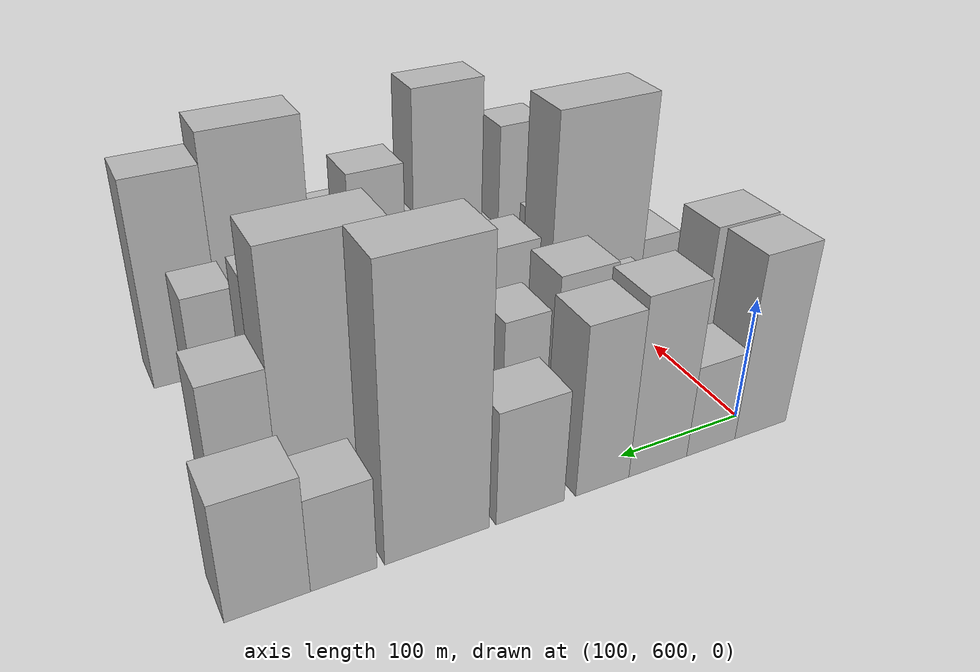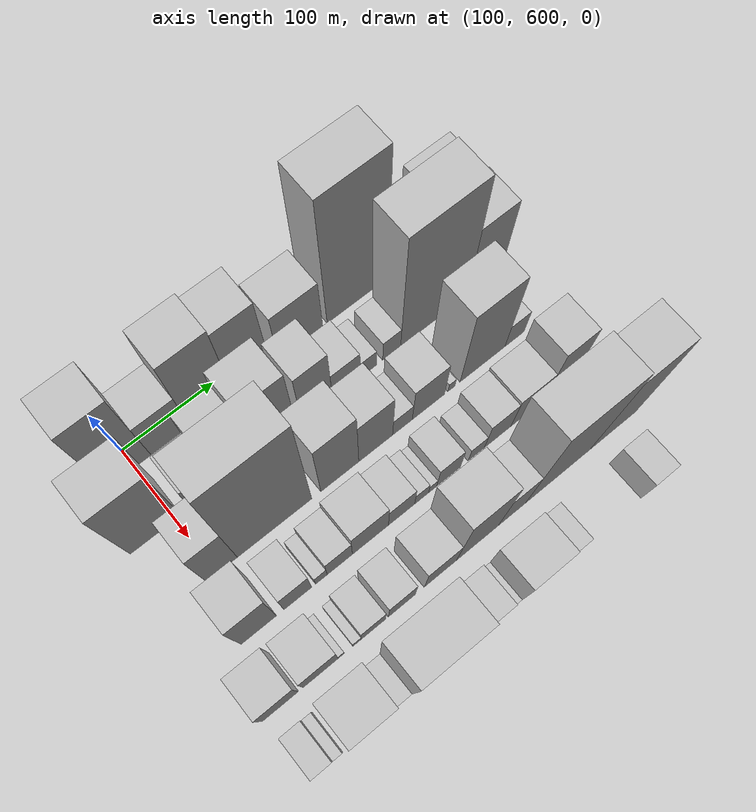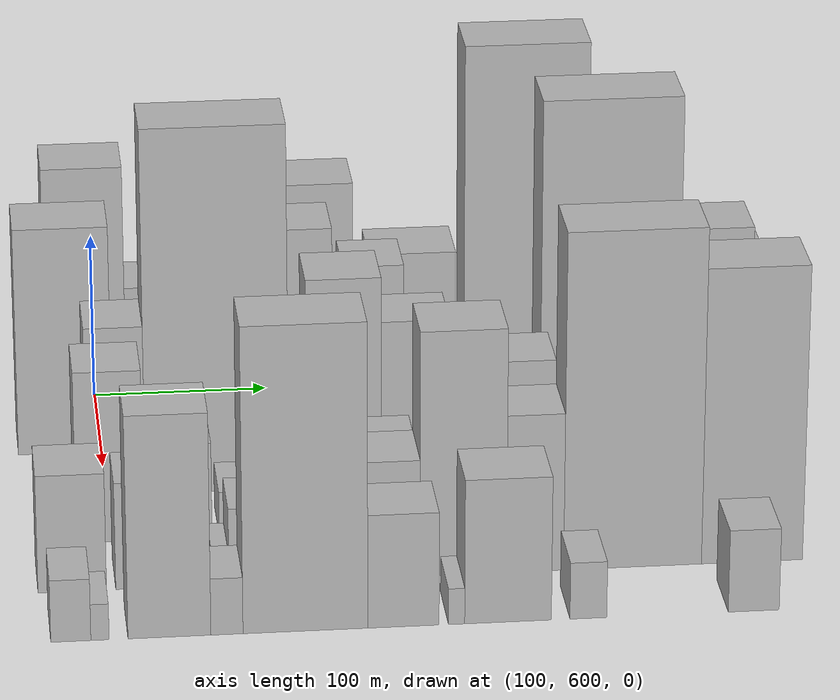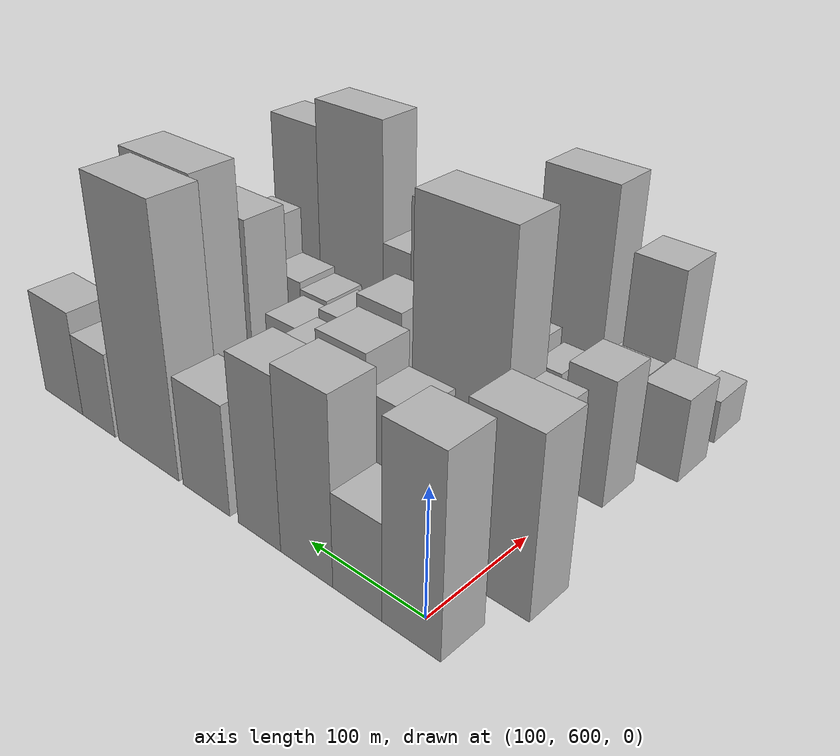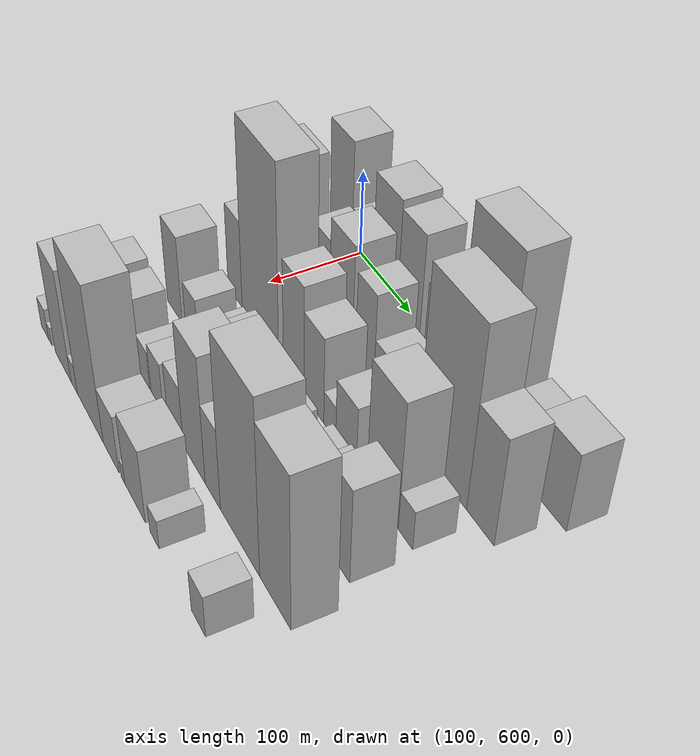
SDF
<sdf version="1.6">
 <world name="default">
  <model name="building_38">
   <static>1</static>
   <pose>100.0000 594.4794 0 0.000000 0.000000 0.000000</pose>
   <link name="link">
    <pose>0 0 75.00 0 0 0</pose>
    <collision name="collision"><geometry><box><size>40.0000 46.2876 150.0000</size></box></geometry></collision>
    <visual name="visual">
     <cast_shadows>0</cast_shadows>
     <geometry><box><size>40.0000 46.2876 150.0000</size></box></geometry>
     <material>
      <script>
       <uri>model://HANNAS_wall/materials/scripts</uri>
       <uri>model://HANNAS_wall/materials/textures</uri>
       <name>vrc/HANNAS_wall</name>
      </script>
     </material>
    </visual>
   </link>
  </model>
  <model name="building_39">
   <static>1</static>
   <pose>100.0000 638.6480 0 0.000000 0.000000 0.000000</pose>
   <link name="link">
    <pose>0 0 37.50 0 0 0</pose>
    <collision name="collision"><geometry><box><size>40.0000 42.0495 75.0000</size></box></geometry></collision>
    <visual name="visual">
     <cast_shadows>0</cast_shadows>
     <geometry><box><size>40.0000 42.0495 75.0000</size></box></geometry>
     <material>
      <script>
       <uri>model://HANNAS_wall/materials/scripts</uri>
       <uri>model://HANNAS_wall/materials/textures</uri>
       <name>vrc/HANNAS_wall</name>
      </script>
     </material>
    </visual>
   </link>
  </model>
  <model name="building_40">
   <static>1</static>
   <pose>100.0000 683.7418 0 0.000000 0.000000 0.000000</pose>
   <link name="link">
    <pose>0 0 72.00 0 0 0</pose>
    <collision name="collision"><geometry><box><size>40.0000 48.1381 144.0000</size></box></geometry></collision>
    <visual name="visual">
     <cast_shadows>0</cast_shadows>
     <geometry><box><size>40.0000 48.1381 144.0000</size></box></geometry>
     <material>
      <script>
       <uri>model://HANNAS_wall/materials/scripts</uri>
       <uri>model://HANNAS_wall/materials/textures</uri>
       <name>vrc/HANNAS_wall</name>
      </script>
     </material>
    </visual>
   </link>
  </model>
  <model name="building_41">
   <static>1</static>
   <pose>100.0000 728.9118 0 0.000000 0.000000 0.000000</pose>
   <link name="link">
    <pose>0 0 67.50 0 0 0</pose>
    <collision name="collision"><geometry><box><size>40.0000 42.2020 135.0000</size></box></geometry></collision>
    <visual name="visual">
     <cast_shadows>0</cast_shadows>
     <geometry><box><size>40.0000 42.2020 135.0000</size></box></geometry>
     <material>
      <script>
       <uri>model://HANNAS_wall/materials/scripts</uri>
       <uri>model://HANNAS_wall/materials/textures</uri>
       <name>vrc/HANNAS_wall</name>
      </script>
     </material>
    </visual>
   </link>
  </model>
  <model name="building_42">
   <static>1</static>
   <pose>100.0000 784.3996 0 0.000000 0.000000 0.000000</pose>
   <link name="link">
    <pose>0 0 45.00 0 0 0</pose>
    <collision name="collision"><geometry><box><size>40.0000 50.7735 90.0000</size></box></geometry></collision>
    <visual name="visual">
     <cast_shadows>0</cast_shadows>
     <geometry><box><size>40.0000 50.7735 90.0000</size></box></geometry>
     <material>
      <script>
       <uri>model://HANNAS_wall/materials/scripts</uri>
       <uri>model://HANNAS_wall/materials/textures</uri>
       <name>vrc/HANNAS_wall</name>
      </script>
     </material>
    </visual>
   </link>
  </model>
  <model name="building_43">
   <static>1</static>
   <pose>100.0000 850.8839 0 0.000000 0.000000 0.000000</pose>
   <link name="link">
    <pose>0 0 108.00 0 0 0</pose>
    <collision name="collision"><geometry><box><size>40.0000 72.1952 216.0000</size></box></geometry></collision>
    <visual name="visual">
     <cast_shadows>0</cast_shadows>
     <geometry><box><size>40.0000 72.1952 216.0000</size></box></geometry>
     <material>
      <script>
       <uri>model://HANNAS_wall/materials/scripts</uri>
       <uri>model://HANNAS_wall/materials/textures</uri>
       <name>vrc/HANNAS_wall</name>
      </script>
     </material>
    </visual>
   </link>
  </model>
  <model name="building_44">
   <static>1</static>
   <pose>100.0000 913.4026 0 0.000000 0.000000 0.000000</pose>
   <link name="link">
    <pose>0 0 36.00 0 0 0</pose>
    <collision name="collision"><geometry><box><size>40.0000 42.8422 72.0000</size></box></geometry></collision>
    <visual name="visual">
     <cast_shadows>0</cast_shadows>
     <geometry><box><size>40.0000 42.8422 72.0000</size></box></geometry>
     <material>
      <script>
       <uri>model://HANNAS_wall/materials/scripts</uri>
       <uri>model://HANNAS_wall/materials/textures</uri>
       <name>vrc/HANNAS_wall</name>
      </script>
     </material>
    </visual>
   </link>
  </model>
  <model name="building_45">
   <static>1</static>
   <pose>100.0000 961.0812 0 0.000000 0.000000 0.000000</pose>
   <link name="link">
    <pose>0 0 45.00 0 0 0</pose>
    <collision name="collision"><geometry><box><size>40.0000 52.5149 90.0000</size></box></geometry></collision>
    <visual name="visual">
     <cast_shadows>0</cast_shadows>
     <geometry><box><size>40.0000 52.5149 90.0000</size></box></geometry>
     <material>
      <script>
       <uri>model://HANNAS_wall/materials/scripts</uri>
       <uri>model://HANNAS_wall/materials/textures</uri>
       <name>vrc/HANNAS_wall</name>
      </script>
     </material>
    </visual>
   </link>
  </model>
  <model name="building_83">
   <static>1</static>
   <pose>160.0000 579.6545 0 0.000000 0.000000 0.000000</pose>
   <link name="link">
    <pose>0 0 69.00 0 0 0</pose>
    <collision name="collision"><geometry><box><size>40.0000 53.5036 138.0000</size></box></geometry></collision>
    <visual name="visual">
     <cast_shadows>0</cast_shadows>
     <geometry><box><size>40.0000 53.5036 138.0000</size></box></geometry>
     <material>
      <script>
       <uri>model://HANNAS_wall/materials/scripts</uri>
       <uri>model://HANNAS_wall/materials/textures</uri>
       <name>vrc/HANNAS_wall</name>
      </script>
     </material>
    </visual>
   </link>
  </model>
  <model name="building_84">
   <static>1</static>
   <pose>160.0000 632.4635 0 0.000000 0.000000 0.000000</pose>
   <link name="link">
    <pose>0 0 27.00 0 0 0</pose>
    <collision name="collision"><geometry><box><size>40.0000 32.1143 54.0000</size></box></geometry></collision>
    <visual name="visual">
     <cast_shadows>0</cast_shadows>
     <geometry><box><size>40.0000 32.1143 54.0000</size></box></geometry>
     <material>
      <script>
       <uri>model://HANNAS_wall/materials/scripts</uri>
       <uri>model://HANNAS_wall/materials/textures</uri>
       <name>vrc/HANNAS_wall</name>
      </script>
     </material>
    </visual>
   </link>
  </model>
  <model name="building_85">
   <static>1</static>
   <pose>160.0000 668.0092 0 0.000000 0.000000 0.000000</pose>
   <link name="link">
    <pose>0 0 52.50 0 0 0</pose>
    <collision name="collision"><geometry><box><size>40.0000 38.9771 105.0000</size></box></geometry></collision>
    <visual name="visual">
     <cast_shadows>0</cast_shadows>
     <geometry><box><size>40.0000 38.9771 105.0000</size></box></geometry>
     <material>
      <script>
       <uri>model://HANNAS_wall/materials/scripts</uri>
       <uri>model://HANNAS_wall/materials/textures</uri>
       <name>vrc/HANNAS_wall</name>
      </script>
     </material>
    </visual>
   </link>
  </model>
  <model name="building_86">
   <static>1</static>
   <pose>160.0000 710.0963 0 0.000000 0.000000 0.000000</pose>
   <link name="link">
    <pose>0 0 66.00 0 0 0</pose>
    <collision name="collision"><geometry><box><size>40.0000 45.1971 132.0000</size></box></geometry></collision>
    <visual name="visual">
     <cast_shadows>0</cast_shadows>
     <geometry><box><size>40.0000 45.1971 132.0000</size></box></geometry>
     <material>
      <script>
       <uri>model://HANNAS_wall/materials/scripts</uri>
       <uri>model://HANNAS_wall/materials/textures</uri>
       <name>vrc/HANNAS_wall</name>
      </script>
     </material>
    </visual>
   </link>
  </model>
  <model name="building_87">
   <static>1</static>
   <pose>160.0000 756.0813 0 0.000000 0.000000 0.000000</pose>
   <link name="link">
    <pose>0 0 54.00 0 0 0</pose>
    <collision name="collision"><geometry><box><size>40.0000 34.7728 108.0000</size></box></geometry></collision>
    <visual name="visual">
     <cast_shadows>0</cast_shadows>
     <geometry><box><size>40.0000 34.7728 108.0000</size></box></geometry>
     <material>
      <script>
       <uri>model://HANNAS_wall/materials/scripts</uri>
       <uri>model://HANNAS_wall/materials/textures</uri>
       <name>vrc/HANNAS_wall</name>
      </script>
     </material>
    </visual>
   </link>
  </model>
  <model name="building_88">
   <static>1</static>
   <pose>160.0000 789.5304 0 0.000000 0.000000 0.000000</pose>
   <link name="link">
    <pose>0 0 28.50 0 0 0</pose>
    <collision name="collision"><geometry><box><size>40.0000 32.1255 57.0000</size></box></geometry></collision>
    <visual name="visual">
     <cast_shadows>0</cast_shadows>
     <geometry><box><size>40.0000 32.1255 57.0000</size></box></geometry>
     <material>
      <script>
       <uri>model://HANNAS_wall/materials/scripts</uri>
       <uri>model://HANNAS_wall/materials/textures</uri>
       <name>vrc/HANNAS_wall</name>
      </script>
     </material>
    </visual>
   </link>
  </model>
  <model name="building_89">
   <static>1</static>
   <pose>160.0000 814.9199 0 0.000000 0.000000 0.000000</pose>
   <link name="link">
    <pose>0 0 16.50 0 0 0</pose>
    <collision name="collision"><geometry><box><size>40.0000 18.6533 33.0000</size></box></geometry></collision>
    <visual name="visual">
     <cast_shadows>0</cast_shadows>
     <geometry><box><size>40.0000 18.6533 33.0000</size></box></geometry>
     <material>
      <script>
       <uri>model://HANNAS_wall/materials/scripts</uri>
       <uri>model://HANNAS_wall/materials/textures</uri>
       <name>vrc/HANNAS_wall</name>
      </script>
     </material>
    </visual>
   </link>
  </model>
  <model name="building_90">
   <static>1</static>
   <pose>160.0000 841.7469 0 0.000000 0.000000 0.000000</pose>
   <link name="link">
    <pose>0 0 19.50 0 0 0</pose>
    <collision name="collision"><geometry><box><size>40.0000 21.0008 39.0000</size></box></geometry></collision>
    <visual name="visual">
     <cast_shadows>0</cast_shadows>
     <geometry><box><size>40.0000 21.0008 39.0000</size></box></geometry>
     <material>
      <script>
       <uri>model://HANNAS_wall/materials/scripts</uri>
       <uri>model://HANNAS_wall/materials/textures</uri>
       <name>vrc/HANNAS_wall</name>
      </script>
     </material>
    </visual>
   </link>
  </model>
  <model name="building_91">
   <static>1</static>
   <pose>160.0000 892.2612 0 0.000000 0.000000 0.000000</pose>
   <link name="link">
    <pose>0 0 102.00 0 0 0</pose>
    <collision name="collision"><geometry><box><size>40.0000 80.0278 204.0000</size></box></geometry></collision>
    <visual name="visual">
     <cast_shadows>0</cast_shadows>
     <geometry><box><size>40.0000 80.0278 204.0000</size></box></geometry>
     <material>
      <script>
       <uri>model://HANNAS_wall/materials/scripts</uri>
       <uri>model://HANNAS_wall/materials/textures</uri>
       <name>vrc/HANNAS_wall</name>
      </script>
     </material>
    </visual>
   </link>
  </model>
  <model name="building_92">
   <static>1</static>
   <pose>160.0000 953.1589 0 0.000000 0.000000 0.000000</pose>
   <link name="link">
    <pose>0 0 61.50 0 0 0</pose>
    <collision name="collision"><geometry><box><size>40.0000 41.7677 123.0000</size></box></geometry></collision>
    <visual name="visual">
     <cast_shadows>0</cast_shadows>
     <geometry><box><size>40.0000 41.7677 123.0000</size></box></geometry>
     <material>
      <script>
       <uri>model://HANNAS_wall/materials/scripts</uri>
       <uri>model://HANNAS_wall/materials/textures</uri>
       <name>vrc/HANNAS_wall</name>
      </script>
     </material>
    </visual>
   </link>
  </model>
  <model name="building_136">
   <static>1</static>
   <pose>220.0000 605.5677 0 0.000000 0.000000 0.000000</pose>
   <link name="link">
    <pose>0 0 51.00 0 0 0</pose>
    <collision name="collision"><geometry><box><size>40.0000 32.8325 102.0000</size></box></geometry></collision>
    <visual name="visual">
     <cast_shadows>0</cast_shadows>
     <geometry><box><size>40.0000 32.8325 102.0000</size></box></geometry>
     <material>
      <script>
       <uri>model://HANNAS_wall/materials/scripts</uri>
       <uri>model://HANNAS_wall/materials/textures</uri>
       <name>vrc/HANNAS_wall</name>
      </script>
     </material>
    </visual>
   </link>
  </model>
  <model name="building_137">
   <static>1</static>
   <pose>220.0000 662.2606 0 0.000000 0.000000 0.000000</pose>
   <link name="link">
    <pose>0 0 109.50 0 0 0</pose>
    <collision name="collision"><geometry><box><size>40.0000 80.5534 219.0000</size></box></geometry></collision>
    <visual name="visual">
     <cast_shadows>0</cast_shadows>
     <geometry><box><size>40.0000 80.5534 219.0000</size></box></geometry>
     <material>
      <script>
       <uri>model://HANNAS_wall/materials/scripts</uri>
       <uri>model://HANNAS_wall/materials/textures</uri>
       <name>vrc/HANNAS_wall</name>
      </script>
     </material>
    </visual>
   </link>
  </model>
  <model name="building_138">
   <static>1</static>
   <pose>220.0000 733.6966 0 0.000000 0.000000 0.000000</pose>
   <link name="link">
    <pose>0 0 63.00 0 0 0</pose>
    <collision name="collision"><geometry><box><size>40.0000 42.3187 126.0000</size></box></geometry></collision>
    <visual name="visual">
     <cast_shadows>0</cast_shadows>
     <geometry><box><size>40.0000 42.3187 126.0000</size></box></geometry>
     <material>
      <script>
       <uri>model://HANNAS_wall/materials/scripts</uri>
       <uri>model://HANNAS_wall/materials/textures</uri>
       <name>vrc/HANNAS_wall</name>
      </script>
     </material>
    </visual>
   </link>
  </model>
  <model name="building_139">
   <static>1</static>
   <pose>220.0000 774.0160 0 0.000000 0.000000 0.000000</pose>
   <link name="link">
    <pose>0 0 49.50 0 0 0</pose>
    <collision name="collision"><geometry><box><size>40.0000 38.3201 99.0000</size></box></geometry></collision>
    <visual name="visual">
     <cast_shadows>0</cast_shadows>
     <geometry><box><size>40.0000 38.3201 99.0000</size></box></geometry>
     <material>
      <script>
       <uri>model://HANNAS_wall/materials/scripts</uri>
       <uri>model://HANNAS_wall/materials/textures</uri>
       <name>vrc/HANNAS_wall</name>
      </script>
     </material>
    </visual>
   </link>
  </model>
  <model name="building_140">
   <static>1</static>
   <pose>220.0000 804.4506 0 0.000000 0.000000 0.000000</pose>
   <link name="link">
    <pose>0 0 19.50 0 0 0</pose>
    <collision name="collision"><geometry><box><size>40.0000 22.5490 39.0000</size></box></geometry></collision>
    <visual name="visual">
     <cast_shadows>0</cast_shadows>
     <geometry><box><size>40.0000 22.5490 39.0000</size></box></geometry>
     <material>
      <script>
       <uri>model://HANNAS_wall/materials/scripts</uri>
       <uri>model://HANNAS_wall/materials/textures</uri>
       <name>vrc/HANNAS_wall</name>
      </script>
     </material>
    </visual>
   </link>
  </model>
  <model name="building_141">
   <static>1</static>
   <pose>220.0000 834.5217 0 0.000000 0.000000 0.000000</pose>
   <link name="link">
    <pose>0 0 36.00 0 0 0</pose>
    <collision name="collision"><geometry><box><size>40.0000 37.5933 72.0000</size></box></geometry></collision>
    <visual name="visual">
     <cast_shadows>0</cast_shadows>
     <geometry><box><size>40.0000 37.5933 72.0000</size></box></geometry>
     <material>
      <script>
       <uri>model://HANNAS_wall/materials/scripts</uri>
       <uri>model://HANNAS_wall/materials/textures</uri>
       <name>vrc/HANNAS_wall</name>
      </script>
     </material>
    </visual>
   </link>
  </model>
  <model name="building_142">
   <static>1</static>
   <pose>220.0000 861.5441 0 0.000000 0.000000 0.000000</pose>
   <link name="link">
    <pose>0 0 9.00 0 0 0</pose>
    <collision name="collision"><geometry><box><size>40.0000 8.4514 18.0000</size></box></geometry></collision>
    <visual name="visual">
     <cast_shadows>0</cast_shadows>
     <geometry><box><size>40.0000 8.4514 18.0000</size></box></geometry>
     <material>
      <script>
       <uri>model://HANNAS_wall/materials/scripts</uri>
       <uri>model://HANNAS_wall/materials/textures</uri>
       <name>vrc/HANNAS_wall</name>
      </script>
     </material>
    </visual>
   </link>
  </model>
  <model name="building_143">
   <static>1</static>
   <pose>220.0000 898.4843 0 0.000000 0.000000 0.000000</pose>
   <link name="link">
    <pose>0 0 72.00 0 0 0</pose>
    <collision name="collision"><geometry><box><size>40.0000 53.4292 144.0000</size></box></geometry></collision>
    <visual name="visual">
     <cast_shadows>0</cast_shadows>
     <geometry><box><size>40.0000 53.4292 144.0000</size></box></geometry>
     <material>
      <script>
       <uri>model://HANNAS_wall/materials/scripts</uri>
       <uri>model://HANNAS_wall/materials/textures</uri>
       <name>vrc/HANNAS_wall</name>
      </script>
     </material>
    </visual>
   </link>
  </model>
  <model name="building_144">
   <static>1</static>
   <pose>220.0000 936.8274 0 0.000000 0.000000 0.000000</pose>
   <link name="link">
    <pose>0 0 22.50 0 0 0</pose>
    <collision name="collision"><geometry><box><size>40.0000 23.2571 45.0000</size></box></geometry></collision>
    <visual name="visual">
     <cast_shadows>0</cast_shadows>
     <geometry><box><size>40.0000 23.2571 45.0000</size></box></geometry>
     <material>
      <script>
       <uri>model://HANNAS_wall/materials/scripts</uri>
       <uri>model://HANNAS_wall/materials/textures</uri>
       <name>vrc/HANNAS_wall</name>
      </script>
     </material>
    </visual>
   </link>
  </model>
  <model name="building_193">
   <static>1</static>
   <pose>280.0000 599.1414 0 0.000000 0.000000 0.000000</pose>
   <link name="link">
    <pose>0 0 51.00 0 0 0</pose>
    <collision name="collision"><geometry><box><size>40.0000 37.0242 102.0000</size></box></geometry></collision>
    <visual name="visual">
     <cast_shadows>0</cast_shadows>
     <geometry><box><size>40.0000 37.0242 102.0000</size></box></geometry>
     <material>
      <script>
       <uri>model://HANNAS_wall/materials/scripts</uri>
       <uri>model://HANNAS_wall/materials/textures</uri>
       <name>vrc/HANNAS_wall</name>
      </script>
     </material>
    </visual>
   </link>
  </model>
  <model name="building_194">
   <static>1</static>
   <pose>280.0000 640.4964 0 0.000000 0.000000 0.000000</pose>
   <link name="link">
    <pose>0 0 28.50 0 0 0</pose>
    <collision name="collision"><geometry><box><size>40.0000 29.6860 57.0000</size></box></geometry></collision>
    <visual name="visual">
     <cast_shadows>0</cast_shadows>
     <geometry><box><size>40.0000 29.6860 57.0000</size></box></geometry>
     <material>
      <script>
       <uri>model://HANNAS_wall/materials/scripts</uri>
       <uri>model://HANNAS_wall/materials/textures</uri>
       <name>vrc/HANNAS_wall</name>
      </script>
     </material>
    </visual>
   </link>
  </model>
  <model name="building_195">
   <static>1</static>
   <pose>280.0000 665.6558 0 0.000000 0.000000 0.000000</pose>
   <link name="link">
    <pose>0 0 13.50 0 0 0</pose>
    <collision name="collision"><geometry><box><size>40.0000 12.6327 27.0000</size></box></geometry></collision>
    <visual name="visual">
     <cast_shadows>0</cast_shadows>
     <geometry><box><size>40.0000 12.6327 27.0000</size></box></geometry>
     <material>
      <script>
       <uri>model://HANNAS_wall/materials/scripts</uri>
       <uri>model://HANNAS_wall/materials/textures</uri>
       <name>vrc/HANNAS_wall</name>
      </script>
     </material>
    </visual>
   </link>
  </model>
  <model name="building_196">
   <static>1</static>
   <pose>280.0000 685.6635 0 0.000000 0.000000 0.000000</pose>
   <link name="link">
    <pose>0 0 24.00 0 0 0</pose>
    <collision name="collision"><geometry><box><size>40.0000 27.3828 48.0000</size></box></geometry></collision>
    <visual name="visual">
     <cast_shadows>0</cast_shadows>
     <geometry><box><size>40.0000 27.3828 48.0000</size></box></geometry>
     <material>
      <script>
       <uri>model://HANNAS_wall/materials/scripts</uri>
       <uri>model://HANNAS_wall/materials/textures</uri>
       <name>vrc/HANNAS_wall</name>
      </script>
     </material>
    </visual>
   </link>
  </model>
  <model name="building_197">
   <static>1</static>
   <pose>280.0000 719.1361 0 0.000000 0.000000 0.000000</pose>
   <link name="link">
    <pose>0 0 33.00 0 0 0</pose>
    <collision name="collision"><geometry><box><size>40.0000 39.5623 66.0000</size></box></geometry></collision>
    <visual name="visual">
     <cast_shadows>0</cast_shadows>
     <geometry><box><size>40.0000 39.5623 66.0000</size></box></geometry>
     <material>
      <script>
       <uri>model://HANNAS_wall/materials/scripts</uri>
       <uri>model://HANNAS_wall/materials/textures</uri>
       <name>vrc/HANNAS_wall</name>
      </script>
     </material>
    </visual>
   </link>
  </model>
  <model name="building_198">
   <static>1</static>
   <pose>280.0000 753.5374 0 0.000000 0.000000 0.000000</pose>
   <link name="link">
    <pose>0 0 25.50 0 0 0</pose>
    <collision name="collision"><geometry><box><size>40.0000 29.2403 51.0000</size></box></geometry></collision>
    <visual name="visual">
     <cast_shadows>0</cast_shadows>
     <geometry><box><size>40.0000 29.2403 51.0000</size></box></geometry>
     <material>
      <script>
       <uri>model://HANNAS_wall/materials/scripts</uri>
       <uri>model://HANNAS_wall/materials/textures</uri>
       <name>vrc/HANNAS_wall</name>
      </script>
     </material>
    </visual>
   </link>
  </model>
  <model name="building_199">
   <static>1</static>
   <pose>280.0000 776.0563 0 0.000000 0.000000 0.000000</pose>
   <link name="link">
    <pose>0 0 15.00 0 0 0</pose>
    <collision name="collision"><geometry><box><size>40.0000 15.7974 30.0000</size></box></geometry></collision>
    <visual name="visual">
     <cast_shadows>0</cast_shadows>
     <geometry><box><size>40.0000 15.7974 30.0000</size></box></geometry>
     <material>
      <script>
       <uri>model://HANNAS_wall/materials/scripts</uri>
       <uri>model://HANNAS_wall/materials/textures</uri>
       <name>vrc/HANNAS_wall</name>
      </script>
     </material>
    </visual>
   </link>
  </model>
  <model name="building_200">
   <static>1</static>
   <pose>280.0000 788.6261 0 0.000000 0.000000 0.000000</pose>
   <link name="link">
    <pose>0 0 10.50 0 0 0</pose>
    <collision name="collision"><geometry><box><size>40.0000 9.3422 21.0000</size></box></geometry></collision>
    <visual name="visual">
     <cast_shadows>0</cast_shadows>
     <geometry><box><size>40.0000 9.3422 21.0000</size></box></geometry>
     <material>
      <script>
       <uri>model://HANNAS_wall/materials/scripts</uri>
       <uri>model://HANNAS_wall/materials/textures</uri>
       <name>vrc/HANNAS_wall</name>
      </script>
     </material>
    </visual>
   </link>
  </model>
  <model name="building_201">
   <static>1</static>
   <pose>280.0000 806.8817 0 0.000000 0.000000 0.000000</pose>
   <link name="link">
    <pose>0 0 25.50 0 0 0</pose>
    <collision name="collision"><geometry><box><size>40.0000 27.1690 51.0000</size></box></geometry></collision>
    <visual name="visual">
     <cast_shadows>0</cast_shadows>
     <geometry><box><size>40.0000 27.1690 51.0000</size></box></geometry>
     <material>
      <script>
       <uri>model://HANNAS_wall/materials/scripts</uri>
       <uri>model://HANNAS_wall/materials/textures</uri>
       <name>vrc/HANNAS_wall</name>
      </script>
     </material>
    </visual>
   </link>
  </model>
  <model name="building_202">
   <static>1</static>
   <pose>280.0000 838.8329 0 0.000000 0.000000 0.000000</pose>
   <link name="link">
    <pose>0 0 16.50 0 0 0</pose>
    <collision name="collision"><geometry><box><size>40.0000 18.7334 33.0000</size></box></geometry></collision>
    <visual name="visual">
     <cast_shadows>0</cast_shadows>
     <geometry><box><size>40.0000 18.7334 33.0000</size></box></geometry>
     <material>
      <script>
       <uri>model://HANNAS_wall/materials/scripts</uri>
       <uri>model://HANNAS_wall/materials/textures</uri>
       <name>vrc/HANNAS_wall</name>
      </script>
     </material>
    </visual>
   </link>
  </model>
  <model name="building_203">
   <static>1</static>
   <pose>280.0000 863.8617 0 0.000000 0.000000 0.000000</pose>
   <link name="link">
    <pose>0 0 30.00 0 0 0</pose>
    <collision name="collision"><geometry><box><size>40.0000 31.3242 60.0000</size></box></geometry></collision>
    <visual name="visual">
     <cast_shadows>0</cast_shadows>
     <geometry><box><size>40.0000 31.3242 60.0000</size></box></geometry>
     <material>
      <script>
       <uri>model://HANNAS_wall/materials/scripts</uri>
       <uri>model://HANNAS_wall/materials/textures</uri>
       <name>vrc/HANNAS_wall</name>
      </script>
     </material>
    </visual>
   </link>
  </model>
  <model name="building_204">
   <static>1</static>
   <pose>280.0000 899.2611 0 0.000000 0.000000 0.000000</pose>
   <link name="link">
    <pose>0 0 33.00 0 0 0</pose>
    <collision name="collision"><geometry><box><size>40.0000 39.4746 66.0000</size></box></geometry></collision>
    <visual name="visual">
     <cast_shadows>0</cast_shadows>
     <geometry><box><size>40.0000 39.4746 66.0000</size></box></geometry>
     <material>
      <script>
       <uri>model://HANNAS_wall/materials/scripts</uri>
       <uri>model://HANNAS_wall/materials/textures</uri>
       <name>vrc/HANNAS_wall</name>
      </script>
     </material>
    </visual>
   </link>
  </model>
  <model name="building_205">
   <static>1</static>
   <pose>280.0000 937.0486 0 0.000000 0.000000 0.000000</pose>
   <link name="link">
    <pose>0 0 54.00 0 0 0</pose>
    <collision name="collision"><geometry><box><size>40.0000 36.1003 108.0000</size></box></geometry></collision>
    <visual name="visual">
     <cast_shadows>0</cast_shadows>
     <geometry><box><size>40.0000 36.1003 108.0000</size></box></geometry>
     <material>
      <script>
       <uri>model://HANNAS_wall/materials/scripts</uri>
       <uri>model://HANNAS_wall/materials/textures</uri>
       <name>vrc/HANNAS_wall</name>
      </script>
     </material>
    </visual>
   </link>
  </model>
  <model name="building_246">
   <static>1</static>
   <pose>340.0000 575.7698 0 0.000000 0.000000 0.000000</pose>
   <link name="link">
    <pose>0 0 34.50 0 0 0</pose>
    <collision name="collision"><geometry><box><size>40.0000 36.9555 69.0000</size></box></geometry></collision>
    <visual name="visual">
     <cast_shadows>0</cast_shadows>
     <geometry><box><size>40.0000 36.9555 69.0000</size></box></geometry>
     <material>
      <script>
       <uri>model://HANNAS_wall/materials/scripts</uri>
       <uri>model://HANNAS_wall/materials/textures</uri>
       <name>vrc/HANNAS_wall</name>
      </script>
     </material>
    </visual>
   </link>
  </model>
  <model name="building_247">
   <static>1</static>
   <pose>340.0000 617.5884 0 0.000000 0.000000 0.000000</pose>
   <link name="link">
    <pose>0 0 31.50 0 0 0</pose>
    <collision name="collision"><geometry><box><size>40.0000 36.6817 63.0000</size></box></geometry></collision>
    <visual name="visual">
     <cast_shadows>0</cast_shadows>
     <geometry><box><size>40.0000 36.6817 63.0000</size></box></geometry>
     <material>
      <script>
       <uri>model://HANNAS_wall/materials/scripts</uri>
       <uri>model://HANNAS_wall/materials/textures</uri>
       <name>vrc/HANNAS_wall</name>
      </script>
     </material>
    </visual>
   </link>
  </model>
  <model name="building_248">
   <static>1</static>
   <pose>340.0000 639.1783 0 0.000000 0.000000 0.000000</pose>
   <link name="link">
    <pose>0 0 7.50 0 0 0</pose>
    <collision name="collision"><geometry><box><size>40.0000 6.4982 15.0000</size></box></geometry></collision>
    <visual name="visual">
     <cast_shadows>0</cast_shadows>
     <geometry><box><size>40.0000 6.4982 15.0000</size></box></geometry>
     <material>
      <script>
       <uri>model://HANNAS_wall/materials/scripts</uri>
       <uri>model://HANNAS_wall/materials/textures</uri>
       <name>vrc/HANNAS_wall</name>
      </script>
     </material>
    </visual>
   </link>
  </model>
  <model name="building_249">
   <static>1</static>
   <pose>340.0000 655.9104 0 0.000000 0.000000 0.000000</pose>
   <link name="link">
    <pose>0 0 9.00 0 0 0</pose>
    <collision name="collision"><geometry><box><size>40.0000 8.9659 18.0000</size></box></geometry></collision>
    <visual name="visual">
     <cast_shadows>0</cast_shadows>
     <geometry><box><size>40.0000 8.9659 18.0000</size></box></geometry>
     <material>
      <script>
       <uri>model://HANNAS_wall/materials/scripts</uri>
       <uri>model://HANNAS_wall/materials/textures</uri>
       <name>vrc/HANNAS_wall</name>
      </script>
     </material>
    </visual>
   </link>
  </model>
  <model name="building_250">
   <static>1</static>
   <pose>340.0000 673.4461 0 0.000000 0.000000 0.000000</pose>
   <link name="link">
    <pose>0 0 22.50 0 0 0</pose>
    <collision name="collision"><geometry><box><size>40.0000 26.1056 45.0000</size></box></geometry></collision>
    <visual name="visual">
     <cast_shadows>0</cast_shadows>
     <geometry><box><size>40.0000 26.1056 45.0000</size></box></geometry>
     <material>
      <script>
       <uri>model://HANNAS_wall/materials/scripts</uri>
       <uri>model://HANNAS_wall/materials/textures</uri>
       <name>vrc/HANNAS_wall</name>
      </script>
     </material>
    </visual>
   </link>
  </model>
  <model name="building_251">
   <static>1</static>
   <pose>340.0000 704.0843 0 0.000000 0.000000 0.000000</pose>
   <link name="link">
    <pose>0 0 28.50 0 0 0</pose>
    <collision name="collision"><geometry><box><size>40.0000 29.1709 57.0000</size></box></geometry></collision>
    <visual name="visual">
     <cast_shadows>0</cast_shadows>
     <geometry><box><size>40.0000 29.1709 57.0000</size></box></geometry>
     <material>
      <script>
       <uri>model://HANNAS_wall/materials/scripts</uri>
       <uri>model://HANNAS_wall/materials/textures</uri>
       <name>vrc/HANNAS_wall</name>
      </script>
     </material>
    </visual>
   </link>
  </model>
  <model name="building_252">
   <static>1</static>
   <pose>340.0000 746.4697 0 0.000000 0.000000 0.000000</pose>
   <link name="link">
    <pose>0 0 34.50 0 0 0</pose>
    <collision name="collision"><geometry><box><size>40.0000 35.6000 69.0000</size></box></geometry></collision>
    <visual name="visual">
     <cast_shadows>0</cast_shadows>
     <geometry><box><size>40.0000 35.6000 69.0000</size></box></geometry>
     <material>
      <script>
       <uri>model://HANNAS_wall/materials/scripts</uri>
       <uri>model://HANNAS_wall/materials/textures</uri>
       <name>vrc/HANNAS_wall</name>
      </script>
     </material>
    </visual>
   </link>
  </model>
  <model name="building_253">
   <static>1</static>
   <pose>340.0000 787.8610 0 0.000000 0.000000 0.000000</pose>
   <link name="link">
    <pose>0 0 72.00 0 0 0</pose>
    <collision name="collision"><geometry><box><size>40.0000 47.1825 144.0000</size></box></geometry></collision>
    <visual name="visual">
     <cast_shadows>0</cast_shadows>
     <geometry><box><size>40.0000 47.1825 144.0000</size></box></geometry>
     <material>
      <script>
       <uri>model://HANNAS_wall/materials/scripts</uri>
       <uri>model://HANNAS_wall/materials/textures</uri>
       <name>vrc/HANNAS_wall</name>
      </script>
     </material>
    </visual>
   </link>
  </model>
  <model name="building_254">
   <static>1</static>
   <pose>340.0000 827.1012 0 0.000000 0.000000 0.000000</pose>
   <link name="link">
    <pose>0 0 46.50 0 0 0</pose>
    <collision name="collision"><geometry><box><size>40.0000 31.2980 93.0000</size></box></geometry></collision>
    <visual name="visual">
     <cast_shadows>0</cast_shadows>
     <geometry><box><size>40.0000 31.2980 93.0000</size></box></geometry>
     <material>
      <script>
       <uri>model://HANNAS_wall/materials/scripts</uri>
       <uri>model://HANNAS_wall/materials/textures</uri>
       <name>vrc/HANNAS_wall</name>
      </script>
     </material>
    </visual>
   </link>
  </model>
  <model name="building_255">
   <static>1</static>
   <pose>340.0000 880.5933 0 0.000000 0.000000 0.000000</pose>
   <link name="link">
    <pose>0 0 99.00 0 0 0</pose>
    <collision name="collision"><geometry><box><size>40.0000 75.6862 198.0000</size></box></geometry></collision>
    <visual name="visual">
     <cast_shadows>0</cast_shadows>
     <geometry><box><size>40.0000 75.6862 198.0000</size></box></geometry>
     <material>
      <script>
       <uri>model://HANNAS_wall/materials/scripts</uri>
       <uri>model://HANNAS_wall/materials/textures</uri>
       <name>vrc/HANNAS_wall</name>
      </script>
     </material>
    </visual>
   </link>
  </model>
  <model name="building_256">
   <static>1</static>
   <pose>340.0000 946.2891 0 0.000000 0.000000 0.000000</pose>
   <link name="link">
    <pose>0 0 87.00 0 0 0</pose>
    <collision name="collision"><geometry><box><size>40.0000 55.7053 174.0000</size></box></geometry></collision>
    <visual name="visual">
     <cast_shadows>0</cast_shadows>
     <geometry><box><size>40.0000 55.7053 174.0000</size></box></geometry>
     <material>
      <script>
       <uri>model://HANNAS_wall/materials/scripts</uri>
       <uri>model://HANNAS_wall/materials/textures</uri>
       <name>vrc/HANNAS_wall</name>
      </script>
     </material>
    </visual>
   </link>
  </model>
  <model name="building_298">
   <static>1</static>
   <pose>400.0000 572.3888 0 0.000000 0.000000 0.000000</pose>
   <link name="link">
    <pose>0 0 18.00 0 0 0</pose>
    <collision name="collision"><geometry><box><size>40.0000 21.2069 36.0000</size></box></geometry></collision>
    <visual name="visual">
     <cast_shadows>0</cast_shadows>
     <geometry><box><size>40.0000 21.2069 36.0000</size></box></geometry>
     <material>
      <script>
       <uri>model://HANNAS_wall/materials/scripts</uri>
       <uri>model://HANNAS_wall/materials/textures</uri>
       <name>vrc/HANNAS_wall</name>
      </script>
     </material>
    </visual>
   </link>
  </model>
  <model name="building_299">
   <static>1</static>
   <pose>400.0000 587.8126 0 0.000000 0.000000 0.000000</pose>
   <link name="link">
    <pose>0 0 10.50 0 0 0</pose>
    <collision name="collision"><geometry><box><size>40.0000 9.6407 21.0000</size></box></geometry></collision>
    <visual name="visual">
     <cast_shadows>0</cast_shadows>
     <geometry><box><size>40.0000 9.6407 21.0000</size></box></geometry>
     <material>
      <script>
       <uri>model://HANNAS_wall/materials/scripts</uri>
       <uri>model://HANNAS_wall/materials/textures</uri>
       <name>vrc/HANNAS_wall</name>
      </script>
     </material>
    </visual>
   </link>
  </model>
  <model name="building_300">
   <static>1</static>
   <pose>400.0000 624.6156 0 0.000000 0.000000 0.000000</pose>
   <link name="link">
    <pose>0 0 64.50 0 0 0</pose>
    <collision name="collision"><geometry><box><size>40.0000 43.9653 129.0000</size></box></geometry></collision>
    <visual name="visual">
     <cast_shadows>0</cast_shadows>
     <geometry><box><size>40.0000 43.9653 129.0000</size></box></geometry>
     <material>
      <script>
       <uri>model://HANNAS_wall/materials/scripts</uri>
       <uri>model://HANNAS_wall/materials/textures</uri>
       <name>vrc/HANNAS_wall</name>
      </script>
     </material>
    </visual>
   </link>
  </model>
  <model name="building_301">
   <static>1</static>
   <pose>400.0000 655.1265 0 0.000000 0.000000 0.000000</pose>
   <link name="link">
    <pose>0 0 16.50 0 0 0</pose>
    <collision name="collision"><geometry><box><size>40.0000 17.0566 33.0000</size></box></geometry></collision>
    <visual name="visual">
     <cast_shadows>0</cast_shadows>
     <geometry><box><size>40.0000 17.0566 33.0000</size></box></geometry>
     <material>
      <script>
       <uri>model://HANNAS_wall/materials/scripts</uri>
       <uri>model://HANNAS_wall/materials/textures</uri>
       <name>vrc/HANNAS_wall</name>
      </script>
     </material>
    </visual>
   </link>
  </model>
  <model name="building_302">
   <static>1</static>
   <pose>400.0000 696.8974 0 0.000000 0.000000 0.000000</pose>
   <link name="link">
    <pose>0 0 88.50 0 0 0</pose>
    <collision name="collision"><geometry><box><size>40.0000 66.4851 177.0000</size></box></geometry></collision>
    <visual name="visual">
     <cast_shadows>0</cast_shadows>
     <geometry><box><size>40.0000 66.4851 177.0000</size></box></geometry>
     <material>
      <script>
       <uri>model://HANNAS_wall/materials/scripts</uri>
       <uri>model://HANNAS_wall/materials/textures</uri>
       <name>vrc/HANNAS_wall</name>
      </script>
     </material>
    </visual>
   </link>
  </model>
  <model name="building_303">
   <static>1</static>
   <pose>400.0000 749.1757 0 0.000000 0.000000 0.000000</pose>
   <link name="link">
    <pose>0 0 33.00 0 0 0</pose>
    <collision name="collision"><geometry><box><size>40.0000 38.0716 66.0000</size></box></geometry></collision>
    <visual name="visual">
     <cast_shadows>0</cast_shadows>
     <geometry><box><size>40.0000 38.0716 66.0000</size></box></geometry>
     <material>
      <script>
       <uri>model://HANNAS_wall/materials/scripts</uri>
       <uri>model://HANNAS_wall/materials/textures</uri>
       <name>vrc/HANNAS_wall</name>
      </script>
     </material>
    </visual>
   </link>
  </model>
  <model name="building_304">
   <static>1</static>
   <pose>400.0000 777.5662 0 0.000000 0.000000 0.000000</pose>
   <link name="link">
    <pose>0 0 10.50 0 0 0</pose>
    <collision name="collision"><geometry><box><size>40.0000 8.7093 21.0000</size></box></geometry></collision>
    <visual name="visual">
     <cast_shadows>0</cast_shadows>
     <geometry><box><size>40.0000 8.7093 21.0000</size></box></geometry>
     <material>
      <script>
       <uri>model://HANNAS_wall/materials/scripts</uri>
       <uri>model://HANNAS_wall/materials/textures</uri>
       <name>vrc/HANNAS_wall</name>
      </script>
     </material>
    </visual>
   </link>
  </model>
  <model name="building_305">
   <static>1</static>
   <pose>400.0000 805.1676 0 0.000000 0.000000 0.000000</pose>
   <link name="link">
    <pose>0 0 42.00 0 0 0</pose>
    <collision name="collision"><geometry><box><size>40.0000 46.4934 84.0000</size></box></geometry></collision>
    <visual name="visual">
     <cast_shadows>0</cast_shadows>
     <geometry><box><size>40.0000 46.4934 84.0000</size></box></geometry>
     <material>
      <script>
       <uri>model://HANNAS_wall/materials/scripts</uri>
       <uri>model://HANNAS_wall/materials/textures</uri>
       <name>vrc/HANNAS_wall</name>
      </script>
     </material>
    </visual>
   </link>
  </model>
  <model name="building_306">
   <static>1</static>
   <pose>400.0000 848.3130 0 0.000000 0.000000 0.000000</pose>
   <link name="link">
    <pose>0 0 16.50 0 0 0</pose>
    <collision name="collision"><geometry><box><size>40.0000 19.7975 33.0000</size></box></geometry></collision>
    <visual name="visual">
     <cast_shadows>0</cast_shadows>
     <geometry><box><size>40.0000 19.7975 33.0000</size></box></geometry>
     <material>
      <script>
       <uri>model://HANNAS_wall/materials/scripts</uri>
       <uri>model://HANNAS_wall/materials/textures</uri>
       <name>vrc/HANNAS_wall</name>
      </script>
     </material>
    </visual>
   </link>
  </model>
  <model name="building_307">
   <static>1</static>
   <pose>400.0000 937.5229 0 0.000000 0.000000 0.000000</pose>
   <link name="link">
    <pose>0 0 24.00 0 0 0</pose>
    <collision name="collision"><geometry><box><size>40.0000 27.5408 48.0000</size></box></geometry></collision>
    <visual name="visual">
     <cast_shadows>0</cast_shadows>
     <geometry><box><size>40.0000 27.5408 48.0000</size></box></geometry>
     <material>
      <script>
       <uri>model://HANNAS_wall/materials/scripts</uri>
       <uri>model://HANNAS_wall/materials/textures</uri>
       <name>vrc/HANNAS_wall</name>
      </script>
     </material>
    </visual>
   </link>
  </model>
 </world>
</sdf>
